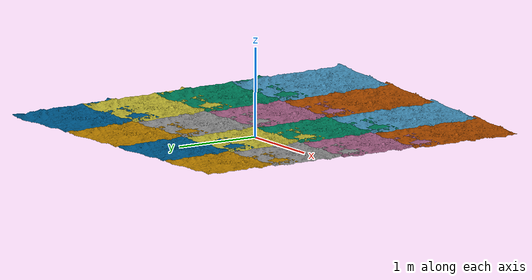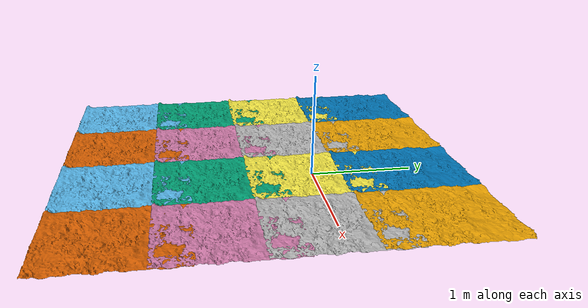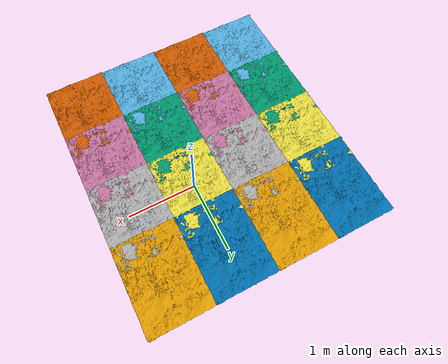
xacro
<?xml version="1.0"?>
<robot xmlns:xacro="http://ros.org/wiki/xacro" name="my_terrain">

  <material name="blue">
    <color rgba="0 0 0.8 1"/>
  </material>

  <link name="base_link"/>

  <link name="my_terraini0j0">
    <visual>
      <geometry>
        <mesh filename="package://earl_gazebo/stl/gravel_l.dae" scale="0.001 0.001 0.001"/>
      </geometry>
      <origin rpy="0 0 0" xyz="0 0 0"/>
    </visual>
    <collision>
      <geometry>
        <mesh filename="package://earl_gazebo/stl/gravel_l.dae" scale="0.001 0.001 0.001"/>
      </geometry>
      <origin rpy="0 0 0" xyz="0 0 0"/>
    </collision>
    <inertial>
      <mass value="0.01" />
      <inertia ixx="0.01" ixy="0.01" iyy="0.01" iyz="0.01" izz="0.01" ixz="0.01"/>
    </inertial>
  </link>

  <joint name="base2terri0j0" type="fixed">
    <parent link="base_link"/>
    <child link="my_terraini0j0"/>
    <origin xyz=" -1.84 -1.84 0" rpy="1.5708 0 0"/>
  </joint>

  <link name="my_terraini0j1">
    <visual>
      <geometry>
        <mesh filename="package://earl_gazebo/stl/gravel_l.dae" scale="0.001 0.001 0.001"/>
      </geometry>
      <origin rpy="0 0 0" xyz="0 0 0"/>
    </visual>
    <collision>
      <geometry>
        <mesh filename="package://earl_gazebo/stl/gravel_l.dae" scale="0.001 0.001 0.001"/>
      </geometry>
      <origin rpy="0 0 0" xyz="0 0 0"/>
    </collision>
    <inertial>
      <mass value="0.01" />
      <inertia ixx="0.01" ixy="0.01" iyy="0.01" iyz="0.01" izz="0.01" ixz="0.01"/>
    </inertial>
  </link>

  <joint name="base2terri0j1" type="fixed">
    <parent link="base_link"/>
    <child link="my_terraini0j1"/>
    <origin xyz=" -1.84 -0.92 0" rpy="1.5708 0 0"/>
  </joint>

  <link name="my_terraini0j2">
    <visual>
      <geometry>
        <mesh filename="package://earl_gazebo/stl/gravel_l.dae" scale="0.001 0.001 0.001"/>
      </geometry>
      <origin rpy="0 0 0" xyz="0 0 0"/>
    </visual>
    <collision>
      <geometry>
        <mesh filename="package://earl_gazebo/stl/gravel_l.dae" scale="0.001 0.001 0.001"/>
      </geometry>
      <origin rpy="0 0 0" xyz="0 0 0"/>
    </collision>
    <inertial>
      <mass value="0.01" />
      <inertia ixx="0.01" ixy="0.01" iyy="0.01" iyz="0.01" izz="0.01" ixz="0.01"/>
    </inertial>
  </link>

  <joint name="base2terri0j2" type="fixed">
    <parent link="base_link"/>
    <child link="my_terraini0j2"/>
    <origin xyz=" -1.84 0.0 0" rpy="1.5708 0 0"/>
  </joint>

  <link name="my_terraini0j3">
    <visual>
      <geometry>
        <mesh filename="package://earl_gazebo/stl/gravel_l.dae" scale="0.001 0.001 0.001"/>
      </geometry>
      <origin rpy="0 0 0" xyz="0 0 0"/>
    </visual>
    <collision>
      <geometry>
        <mesh filename="package://earl_gazebo/stl/gravel_l.dae" scale="0.001 0.001 0.001"/>
      </geometry>
      <origin rpy="0 0 0" xyz="0 0 0"/>
    </collision>
    <inertial>
      <mass value="0.01" />
      <inertia ixx="0.01" ixy="0.01" iyy="0.01" iyz="0.01" izz="0.01" ixz="0.01"/>
    </inertial>
  </link>

  <joint name="base2terri0j3" type="fixed">
    <parent link="base_link"/>
    <child link="my_terraini0j3"/>
    <origin xyz=" -1.84 0.9200000000000002 0" rpy="1.5708 0 0"/>
  </joint>

  <link name="my_terraini1j0">
    <visual>
      <geometry>
        <mesh filename="package://earl_gazebo/stl/gravel_l.dae" scale="0.001 0.001 0.001"/>
      </geometry>
      <origin rpy="0 0 0" xyz="0 0 0"/>
    </visual>
    <collision>
      <geometry>
        <mesh filename="package://earl_gazebo/stl/gravel_l.dae" scale="0.001 0.001 0.001"/>
      </geometry>
      <origin rpy="0 0 0" xyz="0 0 0"/>
    </collision>
    <inertial>
      <mass value="0.01" />
      <inertia ixx="0.01" ixy="0.01" iyy="0.01" iyz="0.01" izz="0.01" ixz="0.01"/>
    </inertial>
  </link>

  <joint name="base2terri1j0" type="fixed">
    <parent link="base_link"/>
    <child link="my_terraini1j0"/>
    <origin xyz=" -0.92 -1.84 0" rpy="1.5708 0 0"/>
  </joint>

  <link name="my_terraini1j1">
    <visual>
      <geometry>
        <mesh filename="package://earl_gazebo/stl/gravel_l.dae" scale="0.001 0.001 0.001"/>
      </geometry>
      <origin rpy="0 0 0" xyz="0 0 0"/>
    </visual>
    <collision>
      <geometry>
        <mesh filename="package://earl_gazebo/stl/gravel_l.dae" scale="0.001 0.001 0.001"/>
      </geometry>
      <origin rpy="0 0 0" xyz="0 0 0"/>
    </collision>
    <inertial>
      <mass value="0.01" />
      <inertia ixx="0.01" ixy="0.01" iyy="0.01" iyz="0.01" izz="0.01" ixz="0.01"/>
    </inertial>
  </link>

  <joint name="base2terri1j1" type="fixed">
    <parent link="base_link"/>
    <child link="my_terraini1j1"/>
    <origin xyz=" -0.92 -0.92 0" rpy="1.5708 0 0"/>
  </joint>

  <link name="my_terraini1j2">
    <visual>
      <geometry>
        <mesh filename="package://earl_gazebo/stl/gravel_l.dae" scale="0.001 0.001 0.001"/>
      </geometry>
      <origin rpy="0 0 0" xyz="0 0 0"/>
    </visual>
    <collision>
      <geometry>
        <mesh filename="package://earl_gazebo/stl/gravel_l.dae" scale="0.001 0.001 0.001"/>
      </geometry>
      <origin rpy="0 0 0" xyz="0 0 0"/>
    </collision>
    <inertial>
      <mass value="0.01" />
      <inertia ixx="0.01" ixy="0.01" iyy="0.01" iyz="0.01" izz="0.01" ixz="0.01"/>
    </inertial>
  </link>

  <joint name="base2terri1j2" type="fixed">
    <parent link="base_link"/>
    <child link="my_terraini1j2"/>
    <origin xyz=" -0.92 0.0 0" rpy="1.5708 0 0"/>
  </joint>

  <link name="my_terraini1j3">
    <visual>
      <geometry>
        <mesh filename="package://earl_gazebo/stl/gravel_l.dae" scale="0.001 0.001 0.001"/>
      </geometry>
      <origin rpy="0 0 0" xyz="0 0 0"/>
    </visual>
    <collision>
      <geometry>
        <mesh filename="package://earl_gazebo/stl/gravel_l.dae" scale="0.001 0.001 0.001"/>
      </geometry>
      <origin rpy="0 0 0" xyz="0 0 0"/>
    </collision>
    <inertial>
      <mass value="0.01" />
      <inertia ixx="0.01" ixy="0.01" iyy="0.01" iyz="0.01" izz="0.01" ixz="0.01"/>
    </inertial>
  </link>

  <joint name="base2terri1j3" type="fixed">
    <parent link="base_link"/>
    <child link="my_terraini1j3"/>
    <origin xyz=" -0.92 0.9200000000000002 0" rpy="1.5708 0 0"/>
  </joint>

  <link name="my_terraini2j0">
    <visual>
      <geometry>
        <mesh filename="package://earl_gazebo/stl/gravel_l.dae" scale="0.001 0.001 0.001"/>
      </geometry>
      <origin rpy="0 0 0" xyz="0 0 0"/>
    </visual>
    <collision>
      <geometry>
        <mesh filename="package://earl_gazebo/stl/gravel_l.dae" scale="0.001 0.001 0.001"/>
      </geometry>
      <origin rpy="0 0 0" xyz="0 0 0"/>
    </collision>
    <inertial>
      <mass value="0.01" />
      <inertia ixx="0.01" ixy="0.01" iyy="0.01" iyz="0.01" izz="0.01" ixz="0.01"/>
    </inertial>
  </link>

  <joint name="base2terri2j0" type="fixed">
    <parent link="base_link"/>
    <child link="my_terraini2j0"/>
    <origin xyz=" 0.0 -1.84 0" rpy="1.5708 0 0"/>
  </joint>

  <link name="my_terraini2j1">
    <visual>
      <geometry>
        <mesh filename="package://earl_gazebo/stl/gravel_l.dae" scale="0.001 0.001 0.001"/>
      </geometry>
      <origin rpy="0 0 0" xyz="0 0 0"/>
    </visual>
    <collision>
      <geometry>
        <mesh filename="package://earl_gazebo/stl/gravel_l.dae" scale="0.001 0.001 0.001"/>
      </geometry>
      <origin rpy="0 0 0" xyz="0 0 0"/>
    </collision>
    <inertial>
      <mass value="0.01" />
      <inertia ixx="0.01" ixy="0.01" iyy="0.01" iyz="0.01" izz="0.01" ixz="0.01"/>
    </inertial>
  </link>

  <joint name="base2terri2j1" type="fixed">
    <parent link="base_link"/>
    <child link="my_terraini2j1"/>
    <origin xyz=" 0.0 -0.92 0" rpy="1.5708 0 0"/>
  </joint>

  <link name="my_terraini2j2">
    <visual>
      <geometry>
        <mesh filename="package://earl_gazebo/stl/gravel_l.dae" scale="0.001 0.001 0.001"/>
      </geometry>
      <origin rpy="0 0 0" xyz="0 0 0"/>
    </visual>
    <collision>
      <geometry>
        <mesh filename="package://earl_gazebo/stl/gravel_l.dae" scale="0.001 0.001 0.001"/>
      </geometry>
      <origin rpy="0 0 0" xyz="0 0 0"/>
    </collision>
    <inertial>
      <mass value="0.01" />
      <inertia ixx="0.01" ixy="0.01" iyy="0.01" iyz="0.01" izz="0.01" ixz="0.01"/>
    </inertial>
  </link>

  <joint name="base2terri2j2" type="fixed">
    <parent link="base_link"/>
    <child link="my_terraini2j2"/>
    <origin xyz=" 0.0 0.0 0" rpy="1.5708 0 0"/>
  </joint>

  <link name="my_terraini2j3">
    <visual>
      <geometry>
        <mesh filename="package://earl_gazebo/stl/gravel_l.dae" scale="0.001 0.001 0.001"/>
      </geometry>
      <origin rpy="0 0 0" xyz="0 0 0"/>
    </visual>
    <collision>
      <geometry>
        <mesh filename="package://earl_gazebo/stl/gravel_l.dae" scale="0.001 0.001 0.001"/>
      </geometry>
      <origin rpy="0 0 0" xyz="0 0 0"/>
    </collision>
    <inertial>
      <mass value="0.01" />
      <inertia ixx="0.01" ixy="0.01" iyy="0.01" iyz="0.01" izz="0.01" ixz="0.01"/>
    </inertial>
  </link>

  <joint name="base2terri2j3" type="fixed">
    <parent link="base_link"/>
    <child link="my_terraini2j3"/>
    <origin xyz=" 0.0 0.9200000000000002 0" rpy="1.5708 0 0"/>
  </joint>

  <link name="my_terraini3j0">
    <visual>
      <geometry>
        <mesh filename="package://earl_gazebo/stl/gravel_l.dae" scale="0.001 0.001 0.001"/>
      </geometry>
      <origin rpy="0 0 0" xyz="0 0 0"/>
    </visual>
    <collision>
      <geometry>
        <mesh filename="package://earl_gazebo/stl/gravel_l.dae" scale="0.001 0.001 0.001"/>
      </geometry>
      <origin rpy="0 0 0" xyz="0 0 0"/>
    </collision>
    <inertial>
      <mass value="0.01" />
      <inertia ixx="0.01" ixy="0.01" iyy="0.01" iyz="0.01" izz="0.01" ixz="0.01"/>
    </inertial>
  </link>

  <joint name="base2terri3j0" type="fixed">
    <parent link="base_link"/>
    <child link="my_terraini3j0"/>
    <origin xyz=" 0.9200000000000002 -1.84 0" rpy="1.5708 0 0"/>
  </joint>

  <link name="my_terraini3j1">
    <visual>
      <geometry>
        <mesh filename="package://earl_gazebo/stl/gravel_l.dae" scale="0.001 0.001 0.001"/>
      </geometry>
      <origin rpy="0 0 0" xyz="0 0 0"/>
    </visual>
    <collision>
      <geometry>
        <mesh filename="package://earl_gazebo/stl/gravel_l.dae" scale="0.001 0.001 0.001"/>
      </geometry>
      <origin rpy="0 0 0" xyz="0 0 0"/>
    </collision>
    <inertial>
      <mass value="0.01" />
      <inertia ixx="0.01" ixy="0.01" iyy="0.01" iyz="0.01" izz="0.01" ixz="0.01"/>
    </inertial>
  </link>

  <joint name="base2terri3j1" type="fixed">
    <parent link="base_link"/>
    <child link="my_terraini3j1"/>
    <origin xyz=" 0.9200000000000002 -0.92 0" rpy="1.5708 0 0"/>
  </joint>

  <link name="my_terraini3j2">
    <visual>
      <geometry>
        <mesh filename="package://earl_gazebo/stl/gravel_l.dae" scale="0.001 0.001 0.001"/>
      </geometry>
      <origin rpy="0 0 0" xyz="0 0 0"/>
    </visual>
    <collision>
      <geometry>
        <mesh filename="package://earl_gazebo/stl/gravel_l.dae" scale="0.001 0.001 0.001"/>
      </geometry>
      <origin rpy="0 0 0" xyz="0 0 0"/>
    </collision>
    <inertial>
      <mass value="0.01" />
      <inertia ixx="0.01" ixy="0.01" iyy="0.01" iyz="0.01" izz="0.01" ixz="0.01"/>
    </inertial>
  </link>

  <joint name="base2terri3j2" type="fixed">
    <parent link="base_link"/>
    <child link="my_terraini3j2"/>
    <origin xyz=" 0.9200000000000002 0.0 0" rpy="1.5708 0 0"/>
  </joint>

  <link name="my_terraini3j3">
    <visual>
      <geometry>
        <mesh filename="package://earl_gazebo/stl/gravel_l.dae" scale="0.001 0.001 0.001"/>
      </geometry>
      <origin rpy="0 0 0" xyz="0 0 0"/>
    </visual>
    <collision>
      <geometry>
        <mesh filename="package://earl_gazebo/stl/gravel_l.dae" scale="0.001 0.001 0.001"/>
      </geometry>
      <origin rpy="0 0 0" xyz="0 0 0"/>
    </collision>
    <inertial>
      <mass value="0.01" />
      <inertia ixx="0.01" ixy="0.01" iyy="0.01" iyz="0.01" izz="0.01" ixz="0.01"/>
    </inertial>
  </link>

  <joint name="base2terri3j3" type="fixed">
    <parent link="base_link"/>
    <child link="my_terraini3j3"/>
    <origin xyz=" 0.9200000000000002 0.9200000000000002 0" rpy="1.5708 0 0"/>
  </joint>

</robot>
